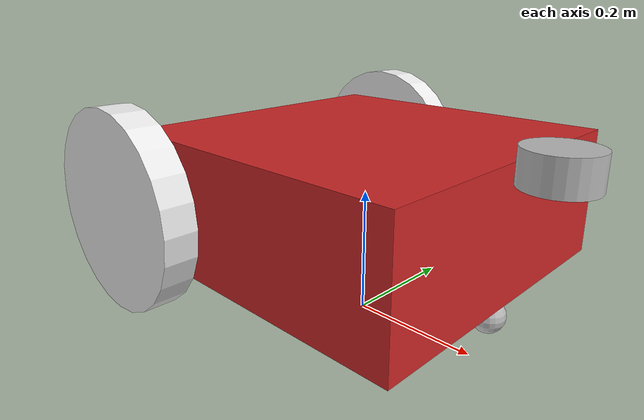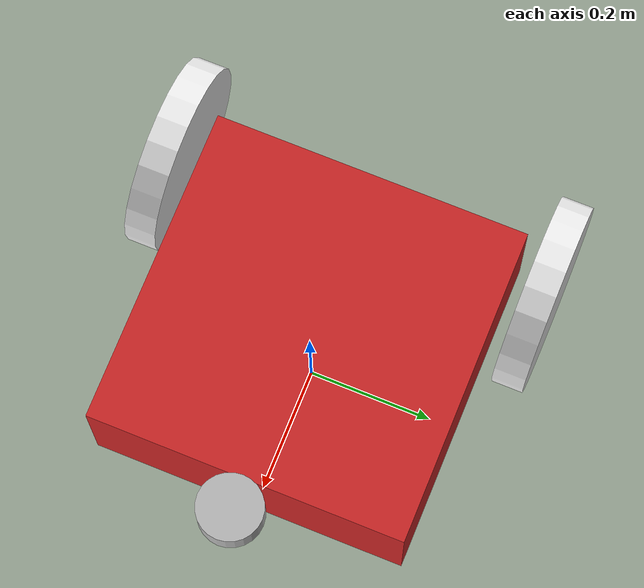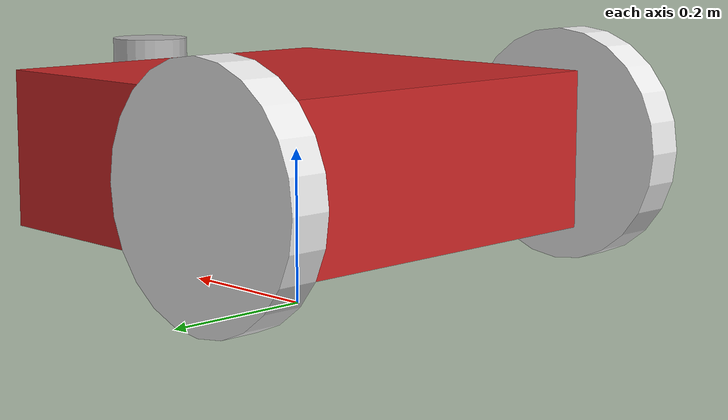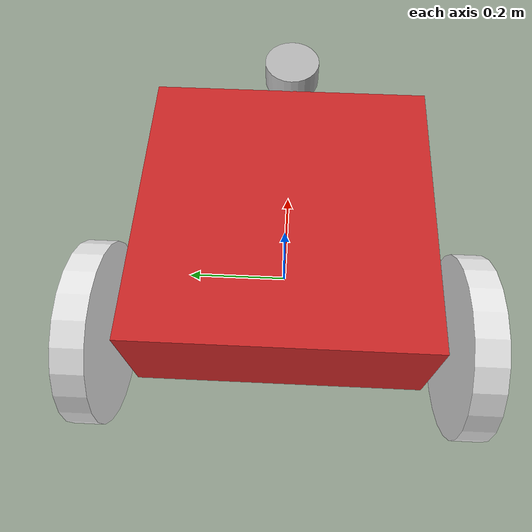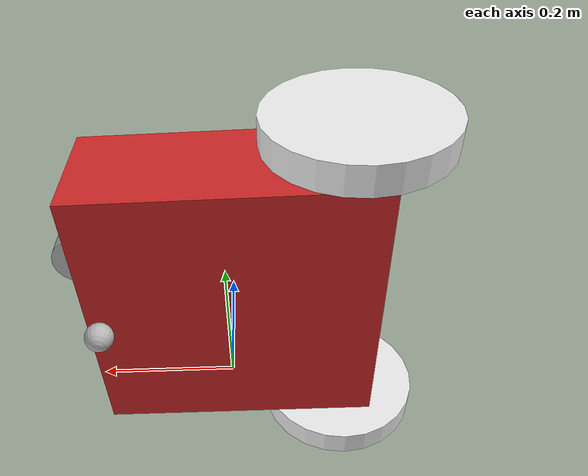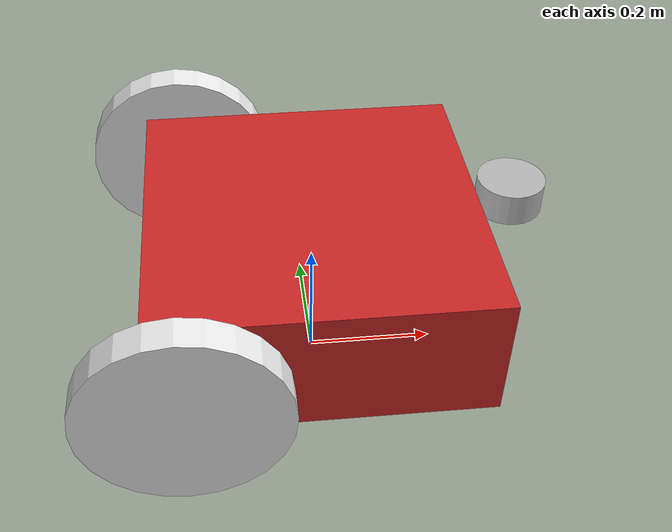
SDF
<sdf version='1.7'>
  <model name='two_wheeled_robot_mine'>
    <link name='base_link'>
      <inertial>
        <pose>0.075 0 0.053571 0 -0 0</pose>
        <mass>0.7</mass>
        <inertia>
          <ixx>0.0306619</ixx>
          <ixy>0</ixy>
          <ixz>-0.007875</ixz>
          <iyy>0.0495369</iyy>
          <iyz>0</iyz>
          <izz>0.0232333</izz>
        </inertia>
      </inertial>
      <collision name='base_link_collision'>
        <pose>0 0 0.2 0 -0 0</pose>
        <geometry>
          <box>
            <size>0.5 0.5 0.2</size>
          </box>
        </geometry>
        <surface>
          <contact>
            <ode/>
          </contact>
          <friction>
            <ode/>
          </friction>
        </surface>
      </collision>
      <collision name='base_link_fixed_joint_lump__front_sphere_collision_1'>
        <pose>0.225 0 0.075 0 -0 0</pose>
        <geometry>
          <sphere>
            <radius>0.025</radius>
          </sphere>
        </geometry>
      </collision>
      <collision name='base_link_fixed_joint_lump__lidar_link_collision_2'>
        <pose>0.3 0 0.3 0 -0 0</pose>
        <geometry>
          <cylinder>
            <length>0.05</length>
            <radius>0.0508</radius>
          </cylinder>
        </geometry>
        <surface>
          <contact>
            <ode/>
          </contact>
          <friction>
            <ode/>
          </friction>
        </surface>
      </collision>
      <visual name='base_link_visual'>
        <pose>0 0 0.2 0 -0 0</pose>
        <geometry>
          <box>
            <size>0.5 0.5 0.2</size>
          </box>
        </geometry>
        <material>
          <script>
            <name>Gazebo/Red</name>
            <uri>file://media/materials/scripts/gazebo.material</uri>
          </script>
        </material>
      </visual>
      <visual name='base_link_fixed_joint_lump__front_sphere_visual_1'>
        <pose>0.225 0 0.075 0 -0 0</pose>
        <geometry>
          <sphere>
            <radius>0.025</radius>
          </sphere>
        </geometry>
      </visual>
      <visual name='base_link_fixed_joint_lump__lidar_link_visual_2'>
        <pose>0.3 0 0.3 0 -0 0</pose>
        <geometry>
          <cylinder>
            <length>0.05</length>
            <radius>0.0508</radius>
          </cylinder>
        </geometry>
      </visual>
      <sensor name='laser' type='ray'>
        <ray>
          <scan>
            <horizontal>
              <samples>181</samples>
              <resolution>1</resolution>
              <min_angle>-1.5708</min_angle>
              <max_angle>1.5708</max_angle>
            </horizontal>
          </scan>
          <range>
            <min>0.08</min>
            <max>10</max>
            <resolution>0.05</resolution>
          </range>
        </ray>
        <always_on>1</always_on>
        <update_rate>10</update_rate>
        <visualize>1</visualize>
        <plugin name='laser' filename='libgazebo_ros_ray_sensor.so'>
          <ros>
            <namespace>/demo</namespace>
            <argument>--ros-args --remap ~/out:=scan</argument>
          </ros>
          <output_type>sensor_msgs/LaserScan</output_type>
        </plugin>
        <pose>0.3 0 0.3 0 -0 0</pose>
      </sensor>
    </link>
    <joint name='drivewheel_l_joint' type='revolute'>
      <pose relative_to='base_link'>-0.2 -0.3 0.2 0 -0 0</pose>
      <parent>base_link</parent>
      <child>drivewheel_l_link</child>
      <axis>
        <xyz>0 1 0</xyz>
        <limit>
          <lower>-3.14159</lower>
          <upper>3.14159</upper>
          <effort>30</effort>
          <velocity>5</velocity>
        </limit>
        <dynamics>
          <spring_reference>0</spring_reference>
          <spring_stiffness>0</spring_stiffness>
        </dynamics>
      </axis>
    </joint>
    <link name='drivewheel_l_link'>
      <pose relative_to='drivewheel_l_joint'>0 0 0 0 -0 0</pose>
      <inertial>
        <pose>0 0 0 1.5708 -0 0</pose>
        <mass>0.1</mass>
        <inertia>
          <ixx>0.000583333</ixx>
          <ixy>0</ixy>
          <ixz>0</ixz>
          <iyy>0.000583333</iyy>
          <iyz>0</iyz>
          <izz>0.001125</izz>
        </inertia>
      </inertial>
      <collision name='drivewheel_l_link_collision'>
        <pose>0 0 0 1.5708 -0 0</pose>
        <geometry>
          <cylinder>
            <length>0.05</length>
            <radius>0.15</radius>
          </cylinder>
        </geometry>
        <surface>
          <contact>
            <ode/>
          </contact>
          <friction>
            <ode/>
          </friction>
        </surface>
      </collision>
      <visual name='drivewheel_l_link_visual'>
        <pose>0 0 0 1.5708 -0 0</pose>
        <geometry>
          <cylinder>
            <length>0.05</length>
            <radius>0.15</radius>
          </cylinder>
        </geometry>
        <material>
          <script>
            <name>Gazebo/White</name>
            <uri>file://media/materials/scripts/gazebo.material</uri>
          </script>
        </material>
      </visual>
    </link>
    <joint name='drivewheel_r_joint' type='revolute'>
      <pose relative_to='base_link'>-0.2 0.3 0.2 0 -0 0</pose>
      <parent>base_link</parent>
      <child>drivewheel_r_link</child>
      <axis>
        <xyz>0 1 0</xyz>
        <limit>
          <lower>-3.14159</lower>
          <upper>3.14159</upper>
          <effort>30</effort>
          <velocity>5</velocity>
        </limit>
        <dynamics>
          <spring_reference>0</spring_reference>
          <spring_stiffness>0</spring_stiffness>
        </dynamics>
      </axis>
    </joint>
    <link name='drivewheel_r_link'>
      <pose relative_to='drivewheel_r_joint'>0 0 0 0 -0 0</pose>
      <inertial>
        <pose>0 0 0 1.5708 -0 0</pose>
        <mass>0.1</mass>
        <inertia>
          <ixx>0.000583333</ixx>
          <ixy>0</ixy>
          <ixz>0</ixz>
          <iyy>0.000583333</iyy>
          <iyz>0</iyz>
          <izz>0.001125</izz>
        </inertia>
      </inertial>
      <collision name='drivewheel_r_link_collision'>
        <pose>0 0 0 1.5708 -0 0</pose>
        <geometry>
          <cylinder>
            <length>0.05</length>
            <radius>0.15</radius>
          </cylinder>
        </geometry>
        <surface>
          <contact>
            <ode/>
          </contact>
          <friction>
            <ode/>
          </friction>
        </surface>
      </collision>
      <visual name='drivewheel_r_link_visual'>
        <pose>0 0 0 1.5708 -0 0</pose>
        <geometry>
          <cylinder>
            <length>0.05</length>
            <radius>0.15</radius>
          </cylinder>
        </geometry>
        <material>
          <script>
            <name>Gazebo/White</name>
            <uri>file://media/materials/scripts/gazebo.material</uri>
          </script>
        </material>
      </visual>
    </link>
    <static>0</static>
    <plugin name='diff_drive' filename='libgazebo_ros_diff_drive.so'>
      <ros>
        <namespace>/demo</namespace>
        <remapping>cmd_vel:=cmd_vel</remapping>
        <remapping>odom:=odom</remapping>
      </ros>
      <updata_rate>30</updata_rate>
      <left_joint>drivewheel_l_joint</left_joint>
      <right_joint>drivewheel_r_joint</right_joint>
      <wheel_separation>0.65</wheel_separation>
      <wheel_diameter>0.3</wheel_diameter>
      <max_wheel_torque>3</max_wheel_torque>
      <max_wheel_acceleration>1.0</max_wheel_acceleration>
      <publish_odom>1</publish_odom>
      <publish_odom_tf>1</publish_odom_tf>
      <publish_wheel_tf>1</publish_wheel_tf>
      <odometry_frame>odom</odometry_frame>
      <robot_base_frame>base_link</robot_base_frame>
    </plugin>
    <frame name='front_sphere_joint' attached_to='base_link'>
      <pose>0.225 0 0.075 0 -0 0</pose>
    </frame>
    <frame name='front_sphere' attached_to='front_sphere_joint'/>
    <frame name='imu_joint' attached_to='base_link'>
      <pose>0.1 0 0.1 0 -0 0</pose>
    </frame>
    <frame name='imu_link' attached_to='imu_joint'/>
    <frame name='lidar_joint' attached_to='base_link'>
      <pose>0.3 0 0.3 0 -0 0</pose>
    </frame>
    <frame name='lidar_link' attached_to='lidar_joint'/>
  </model>
</sdf>
